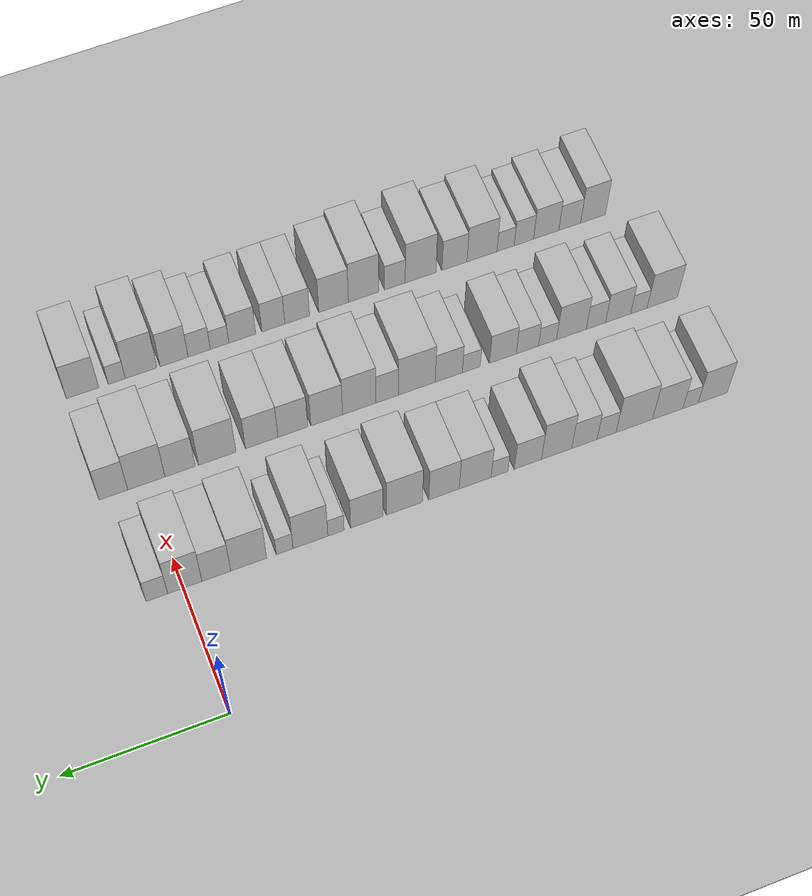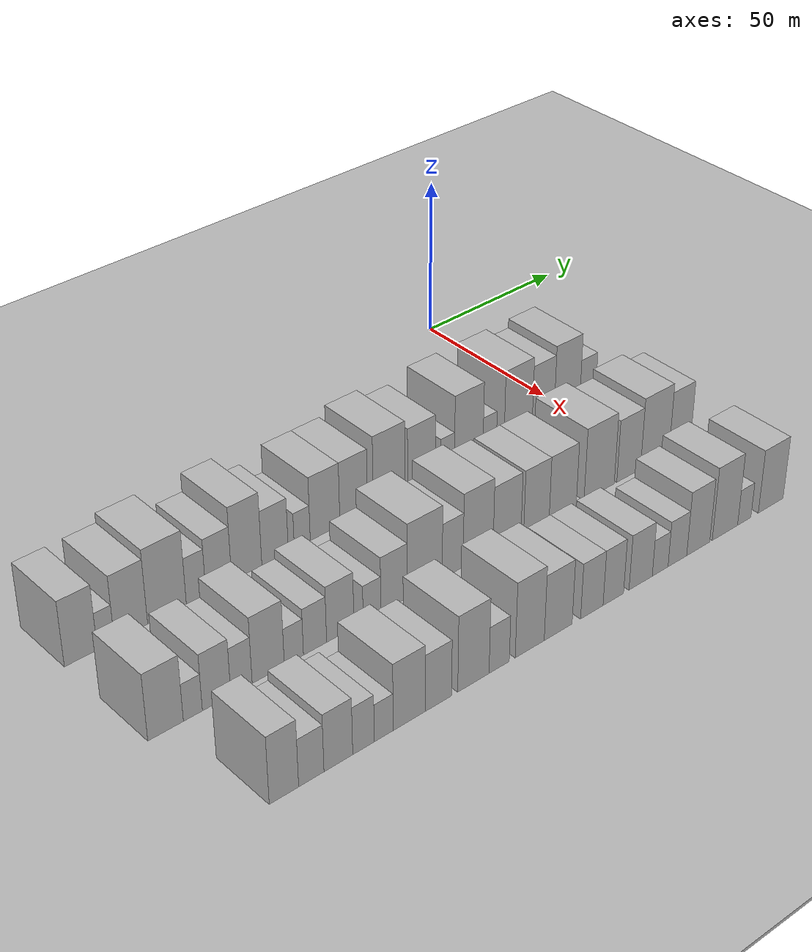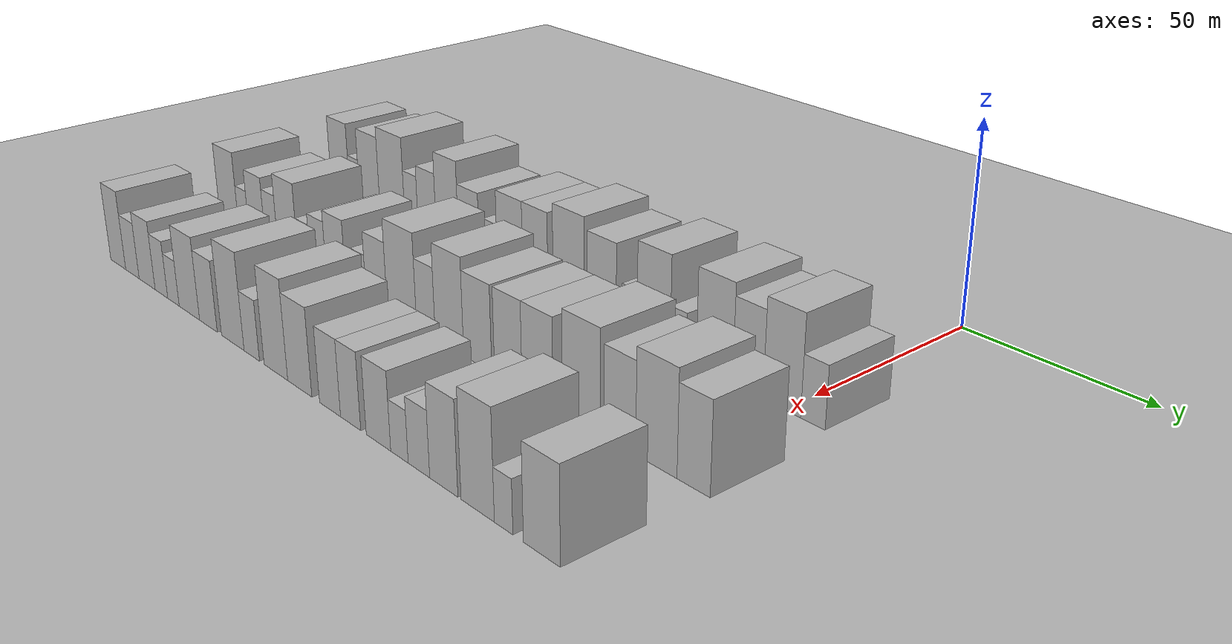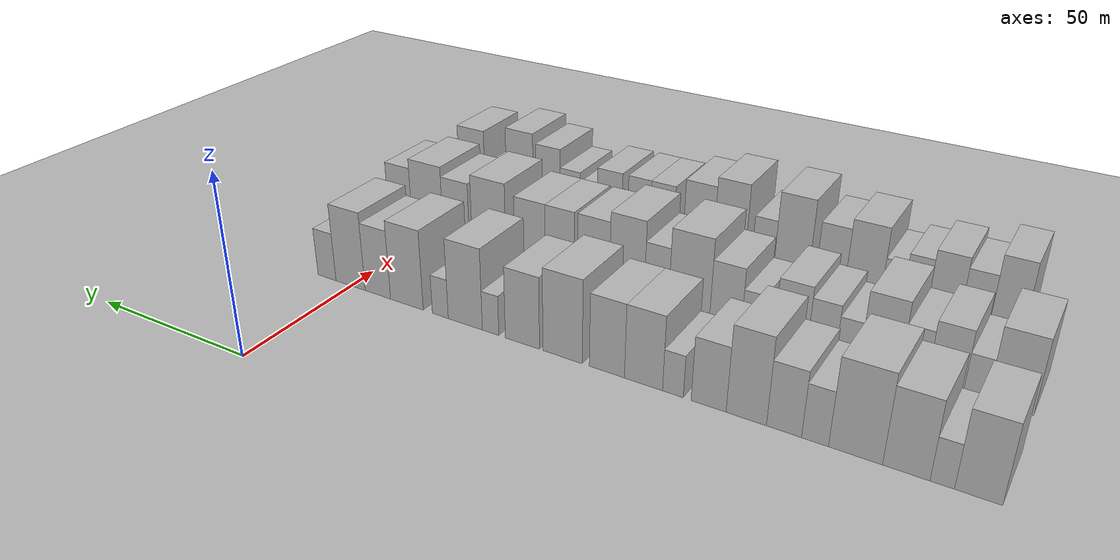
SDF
<sdf version="1.6">
 <world name="default">
  <include><name>ground_plane_1</name><uri>model://HANNAS_ground_plane</uri></include>
  <include>
   <name>ground_plane_2</name>
   <uri>model://HANNAS_ground_plane</uri>
   <pose>100 0 0  0 0 0</pose>
  </include>
  <model name="building_22">
   <static>1</static>
   <pose>50.0000 -167.5594 0 0.000000 0.000000 0.000000</pose>
   <link name="link">
    <pose>0 0 10.50 0 0 0</pose>
    <collision name="collision"><geometry><box><size>20.0000 9.5950 21.0000</size></box></geometry></collision>
    <visual name="visual">
     <cast_shadows>0</cast_shadows>
     <geometry><box><size>20.0000 9.5950 21.0000</size></box></geometry>
     <material>
      <script>
       <uri>model://HANNAS_wall/materials/scripts</uri>
       <uri>model://HANNAS_wall/materials/textures</uri>
       <name>vrc/HANNAS_wall</name>
      </script>
     </material>
    </visual>
   </link>
  </model>
  <model name="building_23">
   <static>1</static>
   <pose>50.0000 -160.2482 0 0.000000 0.000000 0.000000</pose>
   <link name="link">
    <pose>0 0 6.00 0 0 0</pose>
    <collision name="collision"><geometry><box><size>20.0000 5.0275 12.0000</size></box></geometry></collision>
    <visual name="visual">
     <cast_shadows>0</cast_shadows>
     <geometry><box><size>20.0000 5.0275 12.0000</size></box></geometry>
     <material>
      <script>
       <uri>model://HANNAS_wall/materials/scripts</uri>
       <uri>model://HANNAS_wall/materials/textures</uri>
       <name>vrc/HANNAS_wall</name>
      </script>
     </material>
    </visual>
   </link>
  </model>
  <model name="building_24">
   <static>1</static>
   <pose>50.0000 -152.7383 0 0.000000 0.000000 0.000000</pose>
   <link name="link">
    <pose>0 0 10.50 0 0 0</pose>
    <collision name="collision"><geometry><box><size>20.0000 9.9922 21.0000</size></box></geometry></collision>
    <visual name="visual">
     <cast_shadows>0</cast_shadows>
     <geometry><box><size>20.0000 9.9922 21.0000</size></box></geometry>
     <material>
      <script>
       <uri>model://HANNAS_wall/materials/scripts</uri>
       <uri>model://HANNAS_wall/materials/textures</uri>
       <name>vrc/HANNAS_wall</name>
      </script>
     </material>
    </visual>
   </link>
  </model>
  <model name="building_25">
   <static>1</static>
   <pose>50.0000 -141.7926 0 0.000000 0.000000 0.000000</pose>
   <link name="link">
    <pose>0 0 12.00 0 0 0</pose>
    <collision name="collision"><geometry><box><size>20.0000 11.8991 24.0000</size></box></geometry></collision>
    <visual name="visual">
     <cast_shadows>0</cast_shadows>
     <geometry><box><size>20.0000 11.8991 24.0000</size></box></geometry>
     <material>
      <script>
       <uri>model://HANNAS_wall/materials/scripts</uri>
       <uri>model://HANNAS_wall/materials/textures</uri>
       <name>vrc/HANNAS_wall</name>
      </script>
     </material>
    </visual>
   </link>
  </model>
  <model name="building_26">
   <static>1</static>
   <pose>50.0000 -132.7753 0 0.000000 0.000000 0.000000</pose>
   <link name="link">
    <pose>0 0 7.50 0 0 0</pose>
    <collision name="collision"><geometry><box><size>20.0000 6.1356 15.0000</size></box></geometry></collision>
    <visual name="visual">
     <cast_shadows>0</cast_shadows>
     <geometry><box><size>20.0000 6.1356 15.0000</size></box></geometry>
     <material>
      <script>
       <uri>model://HANNAS_wall/materials/scripts</uri>
       <uri>model://HANNAS_wall/materials/textures</uri>
       <name>vrc/HANNAS_wall</name>
      </script>
     </material>
    </visual>
   </link>
  </model>
  <model name="building_27">
   <static>1</static>
   <pose>50.0000 -125.6020 0 0.000000 0.000000 0.000000</pose>
   <link name="link">
    <pose>0 0 9.00 0 0 0</pose>
    <collision name="collision"><geometry><box><size>20.0000 8.2110 18.0000</size></box></geometry></collision>
    <visual name="visual">
     <cast_shadows>0</cast_shadows>
     <geometry><box><size>20.0000 8.2110 18.0000</size></box></geometry>
     <material>
      <script>
       <uri>model://HANNAS_wall/materials/scripts</uri>
       <uri>model://HANNAS_wall/materials/textures</uri>
       <name>vrc/HANNAS_wall</name>
      </script>
     </material>
    </visual>
   </link>
  </model>
  <model name="building_28">
   <static>1</static>
   <pose>50.0000 -116.6158 0 0.000000 0.000000 0.000000</pose>
   <link name="link">
    <pose>0 0 12.00 0 0 0</pose>
    <collision name="collision"><geometry><box><size>20.0000 9.7613 24.0000</size></box></geometry></collision>
    <visual name="visual">
     <cast_shadows>0</cast_shadows>
     <geometry><box><size>20.0000 9.7613 24.0000</size></box></geometry>
     <material>
      <script>
       <uri>model://HANNAS_wall/materials/scripts</uri>
       <uri>model://HANNAS_wall/materials/textures</uri>
       <name>vrc/HANNAS_wall</name>
      </script>
     </material>
    </visual>
   </link>
  </model>
  <model name="building_29">
   <static>1</static>
   <pose>50.0000 -107.3599 0 0.000000 0.000000 0.000000</pose>
   <link name="link">
    <pose>0 0 9.00 0 0 0</pose>
    <collision name="collision"><geometry><box><size>20.0000 8.7504 18.0000</size></box></geometry></collision>
    <visual name="visual">
     <cast_shadows>0</cast_shadows>
     <geometry><box><size>20.0000 8.7504 18.0000</size></box></geometry>
     <material>
      <script>
       <uri>model://HANNAS_wall/materials/scripts</uri>
       <uri>model://HANNAS_wall/materials/textures</uri>
       <name>vrc/HANNAS_wall</name>
      </script>
     </material>
    </visual>
   </link>
  </model>
  <model name="building_30">
   <static>1</static>
   <pose>50.0000 -98.3013 0 0.000000 0.000000 0.000000</pose>
   <link name="link">
    <pose>0 0 6.00 0 0 0</pose>
    <collision name="collision"><geometry><box><size>20.0000 5.3669 12.0000</size></box></geometry></collision>
    <visual name="visual">
     <cast_shadows>0</cast_shadows>
     <geometry><box><size>20.0000 5.3669 12.0000</size></box></geometry>
     <material>
      <script>
       <uri>model://HANNAS_wall/materials/scripts</uri>
       <uri>model://HANNAS_wall/materials/textures</uri>
       <name>vrc/HANNAS_wall</name>
      </script>
     </material>
    </visual>
   </link>
  </model>
  <model name="building_31">
   <static>1</static>
   <pose>50.0000 -90.5469 0 0.000000 0.000000 0.000000</pose>
   <link name="link">
    <pose>0 0 10.50 0 0 0</pose>
    <collision name="collision"><geometry><box><size>20.0000 10.1420 21.0000</size></box></geometry></collision>
    <visual name="visual">
     <cast_shadows>0</cast_shadows>
     <geometry><box><size>20.0000 10.1420 21.0000</size></box></geometry>
     <material>
      <script>
       <uri>model://HANNAS_wall/materials/scripts</uri>
       <uri>model://HANNAS_wall/materials/textures</uri>
       <name>vrc/HANNAS_wall</name>
      </script>
     </material>
    </visual>
   </link>
  </model>
  <model name="building_32">
   <static>1</static>
   <pose>50.0000 -80.6466 0 0.000000 0.000000 0.000000</pose>
   <link name="link">
    <pose>0 0 10.50 0 0 0</pose>
    <collision name="collision"><geometry><box><size>20.0000 9.6586 21.0000</size></box></geometry></collision>
    <visual name="visual">
     <cast_shadows>0</cast_shadows>
     <geometry><box><size>20.0000 9.6586 21.0000</size></box></geometry>
     <material>
      <script>
       <uri>model://HANNAS_wall/materials/scripts</uri>
       <uri>model://HANNAS_wall/materials/textures</uri>
       <name>vrc/HANNAS_wall</name>
      </script>
     </material>
    </visual>
   </link>
  </model>
  <model name="building_33">
   <static>1</static>
   <pose>50.0000 -68.1650 0 0.000000 0.000000 0.000000</pose>
   <link name="link">
    <pose>0 0 12.00 0 0 0</pose>
    <collision name="collision"><geometry><box><size>20.0000 11.3044 24.0000</size></box></geometry></collision>
    <visual name="visual">
     <cast_shadows>0</cast_shadows>
     <geometry><box><size>20.0000 11.3044 24.0000</size></box></geometry>
     <material>
      <script>
       <uri>model://HANNAS_wall/materials/scripts</uri>
       <uri>model://HANNAS_wall/materials/textures</uri>
       <name>vrc/HANNAS_wall</name>
      </script>
     </material>
    </visual>
   </link>
  </model>
  <model name="building_34">
   <static>1</static>
   <pose>50.0000 -56.4193 0 0.000000 0.000000 0.000000</pose>
   <link name="link">
    <pose>0 0 10.50 0 0 0</pose>
    <collision name="collision"><geometry><box><size>20.0000 10.1871 21.0000</size></box></geometry></collision>
    <visual name="visual">
     <cast_shadows>0</cast_shadows>
     <geometry><box><size>20.0000 10.1871 21.0000</size></box></geometry>
     <material>
      <script>
       <uri>model://HANNAS_wall/materials/scripts</uri>
       <uri>model://HANNAS_wall/materials/textures</uri>
       <name>vrc/HANNAS_wall</name>
      </script>
     </material>
    </visual>
   </link>
  </model>
  <model name="building_35">
   <static>1</static>
   <pose>50.0000 -46.7981 0 0.000000 0.000000 0.000000</pose>
   <link name="link">
    <pose>0 0 6.00 0 0 0</pose>
    <collision name="collision"><geometry><box><size>20.0000 5.0552 12.0000</size></box></geometry></collision>
    <visual name="visual">
     <cast_shadows>0</cast_shadows>
     <geometry><box><size>20.0000 5.0552 12.0000</size></box></geometry>
     <material>
      <script>
       <uri>model://HANNAS_wall/materials/scripts</uri>
       <uri>model://HANNAS_wall/materials/textures</uri>
       <name>vrc/HANNAS_wall</name>
      </script>
     </material>
    </visual>
   </link>
  </model>
  <model name="building_36">
   <static>1</static>
   <pose>50.0000 -38.8711 0 0.000000 0.000000 0.000000</pose>
   <link name="link">
    <pose>0 0 12.00 0 0 0</pose>
    <collision name="collision"><geometry><box><size>20.0000 10.7989 24.0000</size></box></geometry></collision>
    <visual name="visual">
     <cast_shadows>0</cast_shadows>
     <geometry><box><size>20.0000 10.7989 24.0000</size></box></geometry>
     <material>
      <script>
       <uri>model://HANNAS_wall/materials/scripts</uri>
       <uri>model://HANNAS_wall/materials/textures</uri>
       <name>vrc/HANNAS_wall</name>
      </script>
     </material>
    </visual>
   </link>
  </model>
  <model name="building_37">
   <static>1</static>
   <pose>50.0000 -30.8934 0 0.000000 0.000000 0.000000</pose>
   <link name="link">
    <pose>0 0 6.00 0 0 0</pose>
    <collision name="collision"><geometry><box><size>20.0000 5.1566 12.0000</size></box></geometry></collision>
    <visual name="visual">
     <cast_shadows>0</cast_shadows>
     <geometry><box><size>20.0000 5.1566 12.0000</size></box></geometry>
     <material>
      <script>
       <uri>model://HANNAS_wall/materials/scripts</uri>
       <uri>model://HANNAS_wall/materials/textures</uri>
       <name>vrc/HANNAS_wall</name>
      </script>
     </material>
    </visual>
   </link>
  </model>
  <model name="building_38">
   <static>1</static>
   <pose>50.0000 -19.8240 0 0.000000 0.000000 0.000000</pose>
   <link name="link">
    <pose>0 0 12.00 0 0 0</pose>
    <collision name="collision"><geometry><box><size>20.0000 10.9820 24.0000</size></box></geometry></collision>
    <visual name="visual">
     <cast_shadows>0</cast_shadows>
     <geometry><box><size>20.0000 10.9820 24.0000</size></box></geometry>
     <material>
      <script>
       <uri>model://HANNAS_wall/materials/scripts</uri>
       <uri>model://HANNAS_wall/materials/textures</uri>
       <name>vrc/HANNAS_wall</name>
      </script>
     </material>
    </visual>
   </link>
  </model>
  <model name="building_39">
   <static>1</static>
   <pose>50.0000 -9.9339 0 0.000000 0.000000 0.000000</pose>
   <link name="link">
    <pose>0 0 10.50 0 0 0</pose>
    <collision name="collision"><geometry><box><size>20.0000 8.7982 21.0000</size></box></geometry></collision>
    <visual name="visual">
     <cast_shadows>0</cast_shadows>
     <geometry><box><size>20.0000 8.7982 21.0000</size></box></geometry>
     <material>
      <script>
       <uri>model://HANNAS_wall/materials/scripts</uri>
       <uri>model://HANNAS_wall/materials/textures</uri>
       <name>vrc/HANNAS_wall</name>
      </script>
     </material>
    </visual>
   </link>
  </model>
  <model name="building_40">
   <static>1</static>
   <pose>50.0000 -0.3177 0 0.000000 0.000000 0.000000</pose>
   <link name="link">
    <pose>0 0 12.00 0 0 0</pose>
    <collision name="collision"><geometry><box><size>20.0000 10.4340 24.0000</size></box></geometry></collision>
    <visual name="visual">
     <cast_shadows>0</cast_shadows>
     <geometry><box><size>20.0000 10.4340 24.0000</size></box></geometry>
     <material>
      <script>
       <uri>model://HANNAS_wall/materials/scripts</uri>
       <uri>model://HANNAS_wall/materials/textures</uri>
       <name>vrc/HANNAS_wall</name>
      </script>
     </material>
    </visual>
   </link>
  </model>
  <model name="building_41">
   <static>1</static>
   <pose>50.0000 8.1816 0 0.000000 0.000000 0.000000</pose>
   <link name="link">
    <pose>0 0 7.50 0 0 0</pose>
    <collision name="collision"><geometry><box><size>20.0000 6.5646 15.0000</size></box></geometry></collision>
    <visual name="visual">
     <cast_shadows>0</cast_shadows>
     <geometry><box><size>20.0000 6.5646 15.0000</size></box></geometry>
     <material>
      <script>
       <uri>model://HANNAS_wall/materials/scripts</uri>
       <uri>model://HANNAS_wall/materials/textures</uri>
       <name>vrc/HANNAS_wall</name>
      </script>
     </material>
    </visual>
   </link>
  </model>
  <model name="building_102">
   <static>1</static>
   <pose>85.0000 -166.9362 0 0.000000 0.000000 0.000000</pose>
   <link name="link">
    <pose>0 0 10.50 0 0 0</pose>
    <collision name="collision"><geometry><box><size>20.0000 10.1860 21.0000</size></box></geometry></collision>
    <visual name="visual">
     <cast_shadows>0</cast_shadows>
     <geometry><box><size>20.0000 10.1860 21.0000</size></box></geometry>
     <material>
      <script>
       <uri>model://HANNAS_wall/materials/scripts</uri>
       <uri>model://HANNAS_wall/materials/textures</uri>
       <name>vrc/HANNAS_wall</name>
      </script>
     </material>
    </visual>
   </link>
  </model>
  <model name="building_103">
   <static>1</static>
   <pose>85.0000 -159.0759 0 0.000000 0.000000 0.000000</pose>
   <link name="link">
    <pose>0 0 6.00 0 0 0</pose>
    <collision name="collision"><geometry><box><size>20.0000 5.5346 12.0000</size></box></geometry></collision>
    <visual name="visual">
     <cast_shadows>0</cast_shadows>
     <geometry><box><size>20.0000 5.5346 12.0000</size></box></geometry>
     <material>
      <script>
       <uri>model://HANNAS_wall/materials/scripts</uri>
       <uri>model://HANNAS_wall/materials/textures</uri>
       <name>vrc/HANNAS_wall</name>
      </script>
     </material>
    </visual>
   </link>
  </model>
  <model name="building_104">
   <static>1</static>
   <pose>85.0000 -152.1023 0 0.000000 0.000000 0.000000</pose>
   <link name="link">
    <pose>0 0 9.00 0 0 0</pose>
    <collision name="collision"><geometry><box><size>20.0000 8.4127 18.0000</size></box></geometry></collision>
    <visual name="visual">
     <cast_shadows>0</cast_shadows>
     <geometry><box><size>20.0000 8.4127 18.0000</size></box></geometry>
     <material>
      <script>
       <uri>model://HANNAS_wall/materials/scripts</uri>
       <uri>model://HANNAS_wall/materials/textures</uri>
       <name>vrc/HANNAS_wall</name>
      </script>
     </material>
    </visual>
   </link>
  </model>
  <model name="building_105">
   <static>1</static>
   <pose>85.0000 -144.6869 0 0.000000 0.000000 0.000000</pose>
   <link name="link">
    <pose>0 0 7.50 0 0 0</pose>
    <collision name="collision"><geometry><box><size>20.0000 6.4181 15.0000</size></box></geometry></collision>
    <visual name="visual">
     <cast_shadows>0</cast_shadows>
     <geometry><box><size>20.0000 6.4181 15.0000</size></box></geometry>
     <material>
      <script>
       <uri>model://HANNAS_wall/materials/scripts</uri>
       <uri>model://HANNAS_wall/materials/textures</uri>
       <name>vrc/HANNAS_wall</name>
      </script>
     </material>
    </visual>
   </link>
  </model>
  <model name="building_106">
   <static>1</static>
   <pose>85.0000 -136.5563 0 0.000000 0.000000 0.000000</pose>
   <link name="link">
    <pose>0 0 10.50 0 0 0</pose>
    <collision name="collision"><geometry><box><size>20.0000 9.8430 21.0000</size></box></geometry></collision>
    <visual name="visual">
     <cast_shadows>0</cast_shadows>
     <geometry><box><size>20.0000 9.8430 21.0000</size></box></geometry>
     <material>
      <script>
       <uri>model://HANNAS_wall/materials/scripts</uri>
       <uri>model://HANNAS_wall/materials/textures</uri>
       <name>vrc/HANNAS_wall</name>
      </script>
     </material>
    </visual>
   </link>
  </model>
  <model name="building_107">
   <static>1</static>
   <pose>85.0000 -128.6560 0 0.000000 0.000000 0.000000</pose>
   <link name="link">
    <pose>0 0 6.00 0 0 0</pose>
    <collision name="collision"><geometry><box><size>20.0000 5.9578 12.0000</size></box></geometry></collision>
    <visual name="visual">
     <cast_shadows>0</cast_shadows>
     <geometry><box><size>20.0000 5.9578 12.0000</size></box></geometry>
     <material>
      <script>
       <uri>model://HANNAS_wall/materials/scripts</uri>
       <uri>model://HANNAS_wall/materials/textures</uri>
       <name>vrc/HANNAS_wall</name>
      </script>
     </material>
    </visual>
   </link>
  </model>
  <model name="building_108">
   <static>1</static>
   <pose>85.0000 -122.0165 0 0.000000 0.000000 0.000000</pose>
   <link name="link">
    <pose>0 0 7.50 0 0 0</pose>
    <collision name="collision"><geometry><box><size>20.0000 7.3210 15.0000</size></box></geometry></collision>
    <visual name="visual">
     <cast_shadows>0</cast_shadows>
     <geometry><box><size>20.0000 7.3210 15.0000</size></box></geometry>
     <material>
      <script>
       <uri>model://HANNAS_wall/materials/scripts</uri>
       <uri>model://HANNAS_wall/materials/textures</uri>
       <name>vrc/HANNAS_wall</name>
      </script>
     </material>
    </visual>
   </link>
  </model>
  <model name="building_109">
   <static>1</static>
   <pose>85.0000 -113.9558 0 0.000000 0.000000 0.000000</pose>
   <link name="link">
    <pose>0 0 9.00 0 0 0</pose>
    <collision name="collision"><geometry><box><size>20.0000 8.8005 18.0000</size></box></geometry></collision>
    <visual name="visual">
     <cast_shadows>0</cast_shadows>
     <geometry><box><size>20.0000 8.8005 18.0000</size></box></geometry>
     <material>
      <script>
       <uri>model://HANNAS_wall/materials/scripts</uri>
       <uri>model://HANNAS_wall/materials/textures</uri>
       <name>vrc/HANNAS_wall</name>
      </script>
     </material>
    </visual>
   </link>
  </model>
  <model name="building_110">
   <static>1</static>
   <pose>85.0000 -103.6436 0 0.000000 0.000000 0.000000</pose>
   <link name="link">
    <pose>0 0 6.00 0 0 0</pose>
    <collision name="collision"><geometry><box><size>20.0000 5.8239 12.0000</size></box></geometry></collision>
    <visual name="visual">
     <cast_shadows>0</cast_shadows>
     <geometry><box><size>20.0000 5.8239 12.0000</size></box></geometry>
     <material>
      <script>
       <uri>model://HANNAS_wall/materials/scripts</uri>
       <uri>model://HANNAS_wall/materials/textures</uri>
       <name>vrc/HANNAS_wall</name>
      </script>
     </material>
    </visual>
   </link>
  </model>
  <model name="building_111">
   <static>1</static>
   <pose>85.0000 -96.2940 0 0.000000 0.000000 0.000000</pose>
   <link name="link">
    <pose>0 0 9.00 0 0 0</pose>
    <collision name="collision"><geometry><box><size>20.0000 8.8754 18.0000</size></box></geometry></collision>
    <visual name="visual">
     <cast_shadows>0</cast_shadows>
     <geometry><box><size>20.0000 8.8754 18.0000</size></box></geometry>
     <material>
      <script>
       <uri>model://HANNAS_wall/materials/scripts</uri>
       <uri>model://HANNAS_wall/materials/textures</uri>
       <name>vrc/HANNAS_wall</name>
      </script>
     </material>
    </visual>
   </link>
  </model>
  <model name="building_112">
   <static>1</static>
   <pose>85.0000 -85.9216 0 0.000000 0.000000 0.000000</pose>
   <link name="link">
    <pose>0 0 12.00 0 0 0</pose>
    <collision name="collision"><geometry><box><size>20.0000 11.8694 24.0000</size></box></geometry></collision>
    <visual name="visual">
     <cast_shadows>0</cast_shadows>
     <geometry><box><size>20.0000 11.8694 24.0000</size></box></geometry>
     <material>
      <script>
       <uri>model://HANNAS_wall/materials/scripts</uri>
       <uri>model://HANNAS_wall/materials/textures</uri>
       <name>vrc/HANNAS_wall</name>
      </script>
     </material>
    </visual>
   </link>
  </model>
  <model name="building_113">
   <static>1</static>
   <pose>85.0000 -76.3562 0 0.000000 0.000000 0.000000</pose>
   <link name="link">
    <pose>0 0 9.00 0 0 0</pose>
    <collision name="collision"><geometry><box><size>20.0000 7.2613 18.0000</size></box></geometry></collision>
    <visual name="visual">
     <cast_shadows>0</cast_shadows>
     <geometry><box><size>20.0000 7.2613 18.0000</size></box></geometry>
     <material>
      <script>
       <uri>model://HANNAS_wall/materials/scripts</uri>
       <uri>model://HANNAS_wall/materials/textures</uri>
       <name>vrc/HANNAS_wall</name>
      </script>
     </material>
    </visual>
   </link>
  </model>
  <model name="building_114">
   <static>1</static>
   <pose>85.0000 -67.4016 0 0.000000 0.000000 0.000000</pose>
   <link name="link">
    <pose>0 0 12.00 0 0 0</pose>
    <collision name="collision"><geometry><box><size>20.0000 10.6480 24.0000</size></box></geometry></collision>
    <visual name="visual">
     <cast_shadows>0</cast_shadows>
     <geometry><box><size>20.0000 10.6480 24.0000</size></box></geometry>
     <material>
      <script>
       <uri>model://HANNAS_wall/materials/scripts</uri>
       <uri>model://HANNAS_wall/materials/textures</uri>
       <name>vrc/HANNAS_wall</name>
      </script>
     </material>
    </visual>
   </link>
  </model>
  <model name="building_115">
   <static>1</static>
   <pose>85.0000 -57.0317 0 0.000000 0.000000 0.000000</pose>
   <link name="link">
    <pose>0 0 10.50 0 0 0</pose>
    <collision name="collision"><geometry><box><size>20.0000 10.0917 21.0000</size></box></geometry></collision>
    <visual name="visual">
     <cast_shadows>0</cast_shadows>
     <geometry><box><size>20.0000 10.0917 21.0000</size></box></geometry>
     <material>
      <script>
       <uri>model://HANNAS_wall/materials/scripts</uri>
       <uri>model://HANNAS_wall/materials/textures</uri>
       <name>vrc/HANNAS_wall</name>
      </script>
     </material>
    </visual>
   </link>
  </model>
  <model name="building_116">
   <static>1</static>
   <pose>85.0000 -46.2611 0 0.000000 0.000000 0.000000</pose>
   <link name="link">
    <pose>0 0 10.50 0 0 0</pose>
    <collision name="collision"><geometry><box><size>20.0000 9.4495 21.0000</size></box></geometry></collision>
    <visual name="visual">
     <cast_shadows>0</cast_shadows>
     <geometry><box><size>20.0000 9.4495 21.0000</size></box></geometry>
     <material>
      <script>
       <uri>model://HANNAS_wall/materials/scripts</uri>
       <uri>model://HANNAS_wall/materials/textures</uri>
       <name>vrc/HANNAS_wall</name>
      </script>
     </material>
    </visual>
   </link>
  </model>
  <model name="building_117">
   <static>1</static>
   <pose>85.0000 -36.4145 0 0.000000 0.000000 0.000000</pose>
   <link name="link">
    <pose>0 0 10.50 0 0 0</pose>
    <collision name="collision"><geometry><box><size>20.0000 10.2438 21.0000</size></box></geometry></collision>
    <visual name="visual">
     <cast_shadows>0</cast_shadows>
     <geometry><box><size>20.0000 10.2438 21.0000</size></box></geometry>
     <material>
      <script>
       <uri>model://HANNAS_wall/materials/scripts</uri>
       <uri>model://HANNAS_wall/materials/textures</uri>
       <name>vrc/HANNAS_wall</name>
      </script>
     </material>
    </visual>
   </link>
  </model>
  <model name="building_118">
   <static>1</static>
   <pose>85.0000 -22.4281 0 0.000000 0.000000 0.000000</pose>
   <link name="link">
    <pose>0 0 12.00 0 0 0</pose>
    <collision name="collision"><geometry><box><size>20.0000 11.7290 24.0000</size></box></geometry></collision>
    <visual name="visual">
     <cast_shadows>0</cast_shadows>
     <geometry><box><size>20.0000 11.7290 24.0000</size></box></geometry>
     <material>
      <script>
       <uri>model://HANNAS_wall/materials/scripts</uri>
       <uri>model://HANNAS_wall/materials/textures</uri>
       <name>vrc/HANNAS_wall</name>
      </script>
     </material>
    </visual>
   </link>
  </model>
  <model name="building_119">
   <static>1</static>
   <pose>85.0000 -10.8532 0 0.000000 0.000000 0.000000</pose>
   <link name="link">
    <pose>0 0 10.50 0 0 0</pose>
    <collision name="collision"><geometry><box><size>20.0000 9.4208 21.0000</size></box></geometry></collision>
    <visual name="visual">
     <cast_shadows>0</cast_shadows>
     <geometry><box><size>20.0000 9.4208 21.0000</size></box></geometry>
     <material>
      <script>
       <uri>model://HANNAS_wall/materials/scripts</uri>
       <uri>model://HANNAS_wall/materials/textures</uri>
       <name>vrc/HANNAS_wall</name>
      </script>
     </material>
    </visual>
   </link>
  </model>
  <model name="building_120">
   <static>1</static>
   <pose>85.0000 -0.3678 0 0.000000 0.000000 0.000000</pose>
   <link name="link">
    <pose>0 0 12.00 0 0 0</pose>
    <collision name="collision"><geometry><box><size>20.0000 11.5500 24.0000</size></box></geometry></collision>
    <visual name="visual">
     <cast_shadows>0</cast_shadows>
     <geometry><box><size>20.0000 11.5500 24.0000</size></box></geometry>
     <material>
      <script>
       <uri>model://HANNAS_wall/materials/scripts</uri>
       <uri>model://HANNAS_wall/materials/textures</uri>
       <name>vrc/HANNAS_wall</name>
      </script>
     </material>
    </visual>
   </link>
  </model>
  <model name="building_121">
   <static>1</static>
   <pose>85.0000 9.8471 0 0.000000 0.000000 0.000000</pose>
   <link name="link">
    <pose>0 0 10.50 0 0 0</pose>
    <collision name="collision"><geometry><box><size>20.0000 8.8798 21.0000</size></box></geometry></collision>
    <visual name="visual">
     <cast_shadows>0</cast_shadows>
     <geometry><box><size>20.0000 8.8798 21.0000</size></box></geometry>
     <material>
      <script>
       <uri>model://HANNAS_wall/materials/scripts</uri>
       <uri>model://HANNAS_wall/materials/textures</uri>
       <name>vrc/HANNAS_wall</name>
      </script>
     </material>
    </visual>
   </link>
  </model>
  <model name="building_182">
   <static>1</static>
   <pose>120.0000 -159.0598 0 0.000000 0.000000 0.000000</pose>
   <link name="link">
    <pose>0 0 10.50 0 0 0</pose>
    <collision name="collision"><geometry><box><size>20.0000 8.4245 21.0000</size></box></geometry></collision>
    <visual name="visual">
     <cast_shadows>0</cast_shadows>
     <geometry><box><size>20.0000 8.4245 21.0000</size></box></geometry>
     <material>
      <script>
       <uri>model://HANNAS_wall/materials/scripts</uri>
       <uri>model://HANNAS_wall/materials/textures</uri>
       <name>vrc/HANNAS_wall</name>
      </script>
     </material>
    </visual>
   </link>
  </model>
  <model name="building_183">
   <static>1</static>
   <pose>120.0000 -151.1487 0 0.000000 0.000000 0.000000</pose>
   <link name="link">
    <pose>0 0 7.50 0 0 0</pose>
    <collision name="collision"><geometry><box><size>20.0000 7.3979 15.0000</size></box></geometry></collision>
    <visual name="visual">
     <cast_shadows>0</cast_shadows>
     <geometry><box><size>20.0000 7.3979 15.0000</size></box></geometry>
     <material>
      <script>
       <uri>model://HANNAS_wall/materials/scripts</uri>
       <uri>model://HANNAS_wall/materials/textures</uri>
       <name>vrc/HANNAS_wall</name>
      </script>
     </material>
    </visual>
   </link>
  </model>
  <model name="building_184">
   <static>1</static>
   <pose>120.0000 -143.1778 0 0.000000 0.000000 0.000000</pose>
   <link name="link">
    <pose>0 0 9.00 0 0 0</pose>
    <collision name="collision"><geometry><box><size>20.0000 8.5438 18.0000</size></box></geometry></collision>
    <visual name="visual">
     <cast_shadows>0</cast_shadows>
     <geometry><box><size>20.0000 8.5438 18.0000</size></box></geometry>
     <material>
      <script>
       <uri>model://HANNAS_wall/materials/scripts</uri>
       <uri>model://HANNAS_wall/materials/textures</uri>
       <name>vrc/HANNAS_wall</name>
      </script>
     </material>
    </visual>
   </link>
  </model>
  <model name="building_185">
   <static>1</static>
   <pose>120.0000 -135.6362 0 0.000000 0.000000 0.000000</pose>
   <link name="link">
    <pose>0 0 7.50 0 0 0</pose>
    <collision name="collision"><geometry><box><size>20.0000 6.5394 15.0000</size></box></geometry></collision>
    <visual name="visual">
     <cast_shadows>0</cast_shadows>
     <geometry><box><size>20.0000 6.5394 15.0000</size></box></geometry>
     <material>
      <script>
       <uri>model://HANNAS_wall/materials/scripts</uri>
       <uri>model://HANNAS_wall/materials/textures</uri>
       <name>vrc/HANNAS_wall</name>
      </script>
     </material>
    </visual>
   </link>
  </model>
  <model name="building_186">
   <static>1</static>
   <pose>120.0000 -129.4641 0 0.000000 0.000000 0.000000</pose>
   <link name="link">
    <pose>0 0 6.00 0 0 0</pose>
    <collision name="collision"><geometry><box><size>20.0000 5.8048 12.0000</size></box></geometry></collision>
    <visual name="visual">
     <cast_shadows>0</cast_shadows>
     <geometry><box><size>20.0000 5.8048 12.0000</size></box></geometry>
     <material>
      <script>
       <uri>model://HANNAS_wall/materials/scripts</uri>
       <uri>model://HANNAS_wall/materials/textures</uri>
       <name>vrc/HANNAS_wall</name>
      </script>
     </material>
    </visual>
   </link>
  </model>
  <model name="building_187">
   <static>1</static>
   <pose>120.0000 -121.5395 0 0.000000 0.000000 0.000000</pose>
   <link name="link">
    <pose>0 0 10.50 0 0 0</pose>
    <collision name="collision"><geometry><box><size>20.0000 10.0444 21.0000</size></box></geometry></collision>
    <visual name="visual">
     <cast_shadows>0</cast_shadows>
     <geometry><box><size>20.0000 10.0444 21.0000</size></box></geometry>
     <material>
      <script>
       <uri>model://HANNAS_wall/materials/scripts</uri>
       <uri>model://HANNAS_wall/materials/textures</uri>
       <name>vrc/HANNAS_wall</name>
      </script>
     </material>
    </visual>
   </link>
  </model>
  <model name="building_188">
   <static>1</static>
   <pose>120.0000 -112.3392 0 0.000000 0.000000 0.000000</pose>
   <link name="link">
    <pose>0 0 9.00 0 0 0</pose>
    <collision name="collision"><geometry><box><size>20.0000 8.3562 18.0000</size></box></geometry></collision>
    <visual name="visual">
     <cast_shadows>0</cast_shadows>
     <geometry><box><size>20.0000 8.3562 18.0000</size></box></geometry>
     <material>
      <script>
       <uri>model://HANNAS_wall/materials/scripts</uri>
       <uri>model://HANNAS_wall/materials/textures</uri>
       <name>vrc/HANNAS_wall</name>
      </script>
     </material>
    </visual>
   </link>
  </model>
  <model name="building_189">
   <static>1</static>
   <pose>120.0000 -101.0368 0 0.000000 0.000000 0.000000</pose>
   <link name="link">
    <pose>0 0 12.00 0 0 0</pose>
    <collision name="collision"><geometry><box><size>20.0000 10.2487 24.0000</size></box></geometry></collision>
    <visual name="visual">
     <cast_shadows>0</cast_shadows>
     <geometry><box><size>20.0000 10.2487 24.0000</size></box></geometry>
     <material>
      <script>
       <uri>model://HANNAS_wall/materials/scripts</uri>
       <uri>model://HANNAS_wall/materials/textures</uri>
       <name>vrc/HANNAS_wall</name>
      </script>
     </material>
    </visual>
   </link>
  </model>
  <model name="building_190">
   <static>1</static>
   <pose>120.0000 -92.5409 0 0.000000 0.000000 0.000000</pose>
   <link name="link">
    <pose>0 0 7.50 0 0 0</pose>
    <collision name="collision"><geometry><box><size>20.0000 6.7431 15.0000</size></box></geometry></collision>
    <visual name="visual">
     <cast_shadows>0</cast_shadows>
     <geometry><box><size>20.0000 6.7431 15.0000</size></box></geometry>
     <material>
      <script>
       <uri>model://HANNAS_wall/materials/scripts</uri>
       <uri>model://HANNAS_wall/materials/textures</uri>
       <name>vrc/HANNAS_wall</name>
      </script>
     </material>
    </visual>
   </link>
  </model>
  <model name="building_191">
   <static>1</static>
   <pose>120.0000 -82.2189 0 0.000000 0.000000 0.000000</pose>
   <link name="link">
    <pose>0 0 12.00 0 0 0</pose>
    <collision name="collision"><geometry><box><size>20.0000 9.9010 24.0000</size></box></geometry></collision>
    <visual name="visual">
     <cast_shadows>0</cast_shadows>
     <geometry><box><size>20.0000 9.9010 24.0000</size></box></geometry>
     <material>
      <script>
       <uri>model://HANNAS_wall/materials/scripts</uri>
       <uri>model://HANNAS_wall/materials/textures</uri>
       <name>vrc/HANNAS_wall</name>
      </script>
     </material>
    </visual>
   </link>
  </model>
  <model name="building_192">
   <static>1</static>
   <pose>120.0000 -72.4062 0 0.000000 0.000000 0.000000</pose>
   <link name="link">
    <pose>0 0 10.50 0 0 0</pose>
    <collision name="collision"><geometry><box><size>20.0000 9.7245 21.0000</size></box></geometry></collision>
    <visual name="visual">
     <cast_shadows>0</cast_shadows>
     <geometry><box><size>20.0000 9.7245 21.0000</size></box></geometry>
     <material>
      <script>
       <uri>model://HANNAS_wall/materials/scripts</uri>
       <uri>model://HANNAS_wall/materials/textures</uri>
       <name>vrc/HANNAS_wall</name>
      </script>
     </material>
    </visual>
   </link>
  </model>
  <model name="building_193">
   <static>1</static>
   <pose>120.0000 -60.5251 0 0.000000 0.000000 0.000000</pose>
   <link name="link">
    <pose>0 0 9.00 0 0 0</pose>
    <collision name="collision"><geometry><box><size>20.0000 8.0377 18.0000</size></box></geometry></collision>
    <visual name="visual">
     <cast_shadows>0</cast_shadows>
     <geometry><box><size>20.0000 8.0377 18.0000</size></box></geometry>
     <material>
      <script>
       <uri>model://HANNAS_wall/materials/scripts</uri>
       <uri>model://HANNAS_wall/materials/textures</uri>
       <name>vrc/HANNAS_wall</name>
      </script>
     </material>
    </visual>
   </link>
  </model>
  <model name="building_194">
   <static>1</static>
   <pose>120.0000 -52.7825 0 0.000000 0.000000 0.000000</pose>
   <link name="link">
    <pose>0 0 9.00 0 0 0</pose>
    <collision name="collision"><geometry><box><size>20.0000 7.4473 18.0000</size></box></geometry></collision>
    <visual name="visual">
     <cast_shadows>0</cast_shadows>
     <geometry><box><size>20.0000 7.4473 18.0000</size></box></geometry>
     <material>
      <script>
       <uri>model://HANNAS_wall/materials/scripts</uri>
       <uri>model://HANNAS_wall/materials/textures</uri>
       <name>vrc/HANNAS_wall</name>
      </script>
     </material>
    </visual>
   </link>
  </model>
  <model name="building_195">
   <static>1</static>
   <pose>120.0000 -42.7389 0 0.000000 0.000000 0.000000</pose>
   <link name="link">
    <pose>0 0 9.00 0 0 0</pose>
    <collision name="collision"><geometry><box><size>20.0000 8.6400 18.0000</size></box></geometry></collision>
    <visual name="visual">
     <cast_shadows>0</cast_shadows>
     <geometry><box><size>20.0000 8.6400 18.0000</size></box></geometry>
     <material>
      <script>
       <uri>model://HANNAS_wall/materials/scripts</uri>
       <uri>model://HANNAS_wall/materials/textures</uri>
       <name>vrc/HANNAS_wall</name>
      </script>
     </material>
    </visual>
   </link>
  </model>
  <model name="building_196">
   <static>1</static>
   <pose>120.0000 -35.4454 0 0.000000 0.000000 0.000000</pose>
   <link name="link">
    <pose>0 0 6.00 0 0 0</pose>
    <collision name="collision"><geometry><box><size>20.0000 5.9469 12.0000</size></box></geometry></collision>
    <visual name="visual">
     <cast_shadows>0</cast_shadows>
     <geometry><box><size>20.0000 5.9469 12.0000</size></box></geometry>
     <material>
      <script>
       <uri>model://HANNAS_wall/materials/scripts</uri>
       <uri>model://HANNAS_wall/materials/textures</uri>
       <name>vrc/HANNAS_wall</name>
      </script>
     </material>
    </visual>
   </link>
  </model>
  <model name="building_197">
   <static>1</static>
   <pose>120.0000 -28.9083 0 0.000000 0.000000 0.000000</pose>
   <link name="link">
    <pose>0 0 7.50 0 0 0</pose>
    <collision name="collision"><geometry><box><size>20.0000 7.1273 15.0000</size></box></geometry></collision>
    <visual name="visual">
     <cast_shadows>0</cast_shadows>
     <geometry><box><size>20.0000 7.1273 15.0000</size></box></geometry>
     <material>
      <script>
       <uri>model://HANNAS_wall/materials/scripts</uri>
       <uri>model://HANNAS_wall/materials/textures</uri>
       <name>vrc/HANNAS_wall</name>
      </script>
     </material>
    </visual>
   </link>
  </model>
  <model name="building_198">
   <static>1</static>
   <pose>120.0000 -20.8692 0 0.000000 0.000000 0.000000</pose>
   <link name="link">
    <pose>0 0 10.50 0 0 0</pose>
    <collision name="collision"><geometry><box><size>20.0000 8.9509 21.0000</size></box></geometry></collision>
    <visual name="visual">
     <cast_shadows>0</cast_shadows>
     <geometry><box><size>20.0000 8.9509 21.0000</size></box></geometry>
     <material>
      <script>
       <uri>model://HANNAS_wall/materials/scripts</uri>
       <uri>model://HANNAS_wall/materials/textures</uri>
       <name>vrc/HANNAS_wall</name>
      </script>
     </material>
    </visual>
   </link>
  </model>
  <model name="building_199">
   <static>1</static>
   <pose>120.0000 -10.3624 0 0.000000 0.000000 0.000000</pose>
   <link name="link">
    <pose>0 0 12.00 0 0 0</pose>
    <collision name="collision"><geometry><box><size>20.0000 10.0629 24.0000</size></box></geometry></collision>
    <visual name="visual">
     <cast_shadows>0</cast_shadows>
     <geometry><box><size>20.0000 10.0629 24.0000</size></box></geometry>
     <material>
      <script>
       <uri>model://HANNAS_wall/materials/scripts</uri>
       <uri>model://HANNAS_wall/materials/textures</uri>
       <name>vrc/HANNAS_wall</name>
      </script>
     </material>
    </visual>
   </link>
  </model>
  <model name="building_200">
   <static>1</static>
   <pose>120.0000 -2.6409 0 0.000000 0.000000 0.000000</pose>
   <link name="link">
    <pose>0 0 6.00 0 0 0</pose>
    <collision name="collision"><geometry><box><size>20.0000 5.3800 12.0000</size></box></geometry></collision>
    <visual name="visual">
     <cast_shadows>0</cast_shadows>
     <geometry><box><size>20.0000 5.3800 12.0000</size></box></geometry>
     <material>
      <script>
       <uri>model://HANNAS_wall/materials/scripts</uri>
       <uri>model://HANNAS_wall/materials/textures</uri>
       <name>vrc/HANNAS_wall</name>
      </script>
     </material>
    </visual>
   </link>
  </model>
  <model name="building_201">
   <static>1</static>
   <pose>120.0000 8.1446 0 0.000000 0.000000 0.000000</pose>
   <link name="link">
    <pose>0 0 10.50 0 0 0</pose>
    <collision name="collision"><geometry><box><size>20.0000 10.1909 21.0000</size></box></geometry></collision>
    <visual name="visual">
     <cast_shadows>0</cast_shadows>
     <geometry><box><size>20.0000 10.1909 21.0000</size></box></geometry>
     <material>
      <script>
       <uri>model://HANNAS_wall/materials/scripts</uri>
       <uri>model://HANNAS_wall/materials/textures</uri>
       <name>vrc/HANNAS_wall</name>
      </script>
     </material>
    </visual>
   </link>
  </model>
 </world>
</sdf>
